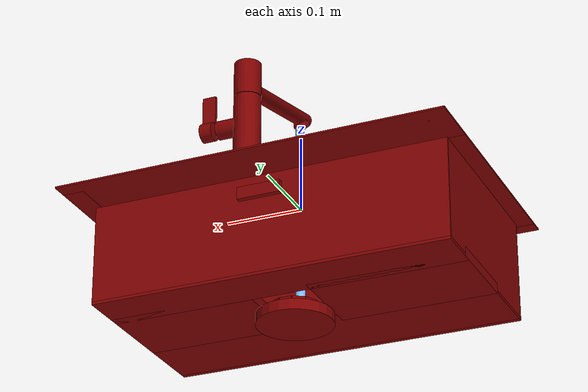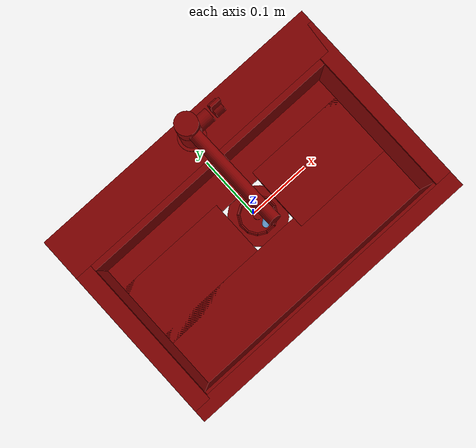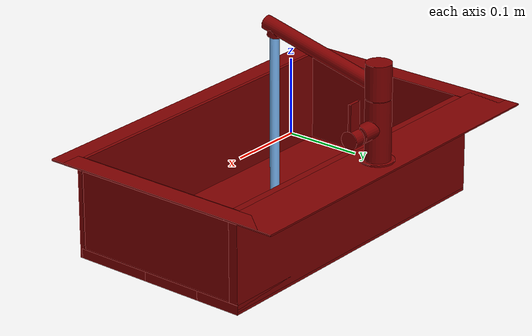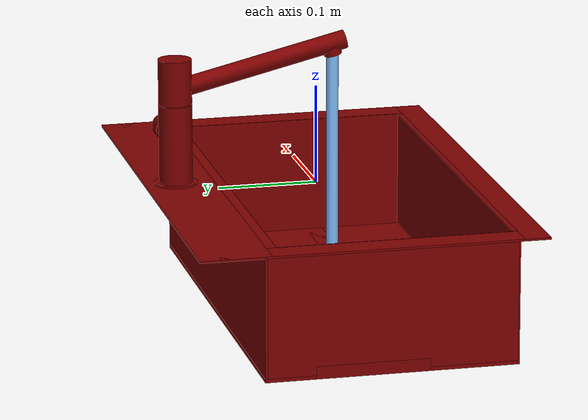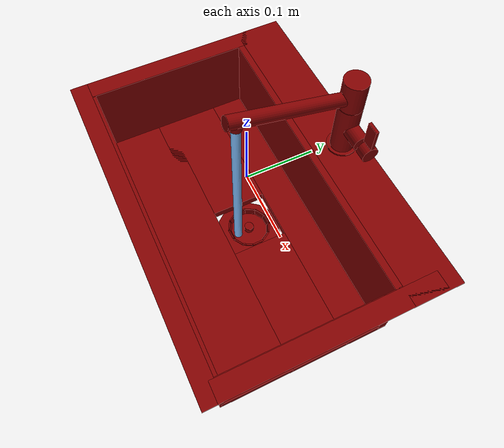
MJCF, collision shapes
<mujoco model="model">
  <compiler angle="radian"/>
  <asset>
    <mesh file="visuals/handle.obj" name="handle_vis"/>
    <mesh file="visuals/Body001.obj" name="Body001_vis"/>
    <mesh file="visuals/Funnel001.obj" name="Funnel001_vis"/>
    <mesh file="visuals/spout.obj" name="spout_vis"/>
    <texture file="visuals/T_BC001.png" name="Body001_material" type="2d"/>
    <material name="Body001_material" rgba="1 1 1 1.0" texture="Body001_material" shininess="0.4472135901451111" specular="0.3103448502657381"/>
    <texture file="visuals/T_BC001.png" name="handle_material" type="2d"/>
    <material name="handle_material" rgba="1 1 1 1.0" texture="handle_material" shininess="0.4472135901451111" specular="0.3103448502657381"/>
    <texture file="visuals/T_BC001.png" name="Funnel001_material" type="2d"/>
    <material name="Funnel001_material" rgba="1 1 1 1.0" texture="Funnel001_material" shininess="0.4472135901451111" specular="0.3103448502657381"/>
    <texture file="visuals/T_BC001.png" name="spout_material" type="2d"/>
    <material name="spout_material" rgba="1 1 1 1.0" texture="spout_material" shininess="0.4472135901451111" specular="0.3103448502657381"/>
  </asset>
  <default>
    <default class="visual">
      <geom conaffinity="0" contype="0" group="1" type="mesh"/>
    </default>
    <default class="collision">
      <geom group="0" rgba="0.5 0 0 0.5"/>
    </default>
    <default class="spawn">
      <geom group="0" rgba="1 1 1 0.5" contype="0" conaffinity="0"/>
      <site group="0" rgba="1 1 1 0.5"/>
    </default>
    <default class="region">
      <geom group="1" conaffinity="0" contype="0" rgba="0 1 0 0"/>
    </default>
  </default>
  <worldbody>
    <body>
      <body name="object">
        <geom mesh="Body001_vis" type="mesh" solimp="0.998 0.998 0.001" solref="0.001 1" density="100" friction="0.95 0.3 0.1" class="visual" material="Body001_material"/>
        <geom class="collision" type="box" pos="-0.226880 -0.023009 -0.061466" size="0.003667345503345132 0.12475115060806274 0.06482119858264923" quat="1.0 0.0 0.0 0.0"/>
        <geom class="collision" type="box" pos="0.227180 -0.023009 -0.061466" size="0.00346828973852098 0.12475115060806274 0.06482119858264923" quat="1.0 0.0 0.0 0.0"/>
        <geom class="collision" type="box" pos="0.000931 -0.145880 -0.063383" size="0.23147721588611603 0.0033645902294665575 0.06673800200223923" quat="1.0 0.0 0.0 0.0"/>
        <geom class="collision" type="box" pos="0.000931 0.098031 -0.061466" size="0.23147781193256378 0.00639995327219367 0.06482119858264923" quat="1.0 0.0 0.0 0.0"/>
        <geom class="collision" type="box" pos="0.000304 0.136908 0.002273" size="0.25214558839797974 0.035295356065034866 0.001082701375707984" quat="1.0 0.0 0.0 0.0"/>
        <geom class="collision" type="box" pos="0.000931 -0.094234 -0.123721" size="0.23147781193256378 0.05219629034399986 0.00639995327219367" quat="1.0 0.0 0.0 0.0"/>
        <geom class="collision" type="box" pos="0.000931 0.072662 -0.123721" size="0.23147781193256378 0.03176882117986679 0.00639995327219367" quat="1.0 0.0 0.0 0.0"/>
        <geom class="collision" type="box" pos="-0.129791 -0.002929 -0.123721" size="0.10075671225786209 0.05700807645916939 0.006399955600500107" quat="1.0 0.0 0.0 0.0"/>
        <geom class="collision" type="box" pos="0.139735 -0.002929 -0.123721" size="0.09267355501651764 0.05700806528329849 0.006399955600500107" quat="1.0 0.0 0.0 0.0"/>
        <geom class="collision" type="cylinder" pos="0.009182 0.142151 0.046606" size="0.016879526898264885 0.04095381125807762" quat="1.0 0.0 0.0 0.0"/>
        <geom class="collision" type="cylinder" pos="0.033685 0.142206 0.050759" size="0.011549532413482666 0.013307765126228333" quat="0.7071068286895752 1.2101618374060763e-08 0.7071067690849304 -1.2101617485882343e-08"/>
        <geom class="collision" type="cylinder" pos="0.009182 0.142151 0.006406" size="0.021738331764936447 0.0010754705872386694" quat="1.0 0.0 0.0 0.0"/>
        <geom class="collision" type="box" pos="0.008336 0.108004 -0.021319" size="0.0278876144438982 0.003650446655228734 0.007940861396491528" quat="1.0 0.0 0.0 0.0"/>
        <geom class="collision" type="box" pos="0.000304 -0.160509 0.002273" size="0.2521454393863678 0.013078400865197182 0.001082701375707984" quat="1.0 0.0 0.0 0.0"/>
        <geom class="collision" type="box" pos="0.238591 -0.001537 0.002273" size="0.013858308084309101 0.15294557809829712 0.001082701375707984" quat="1.0 0.0 0.0 0.0"/>
        <geom class="collision" type="box" pos="-0.237984 -0.001537 0.002273" size="0.013858308084309101 0.1529456079006195 0.001082701375707984" quat="1.0 0.0 0.0 0.0"/>
        <geom class="collision" type="cylinder" pos="0.009182 -0.001668 -0.146255" size="0.048743925988674164 0.006842711940407753" quat="1.0 0.0 0.0 0.0"/>
        <body name="handle">
          <joint axis="1.0 0.0 0.0" pos="0.058921 0.143078 0.050650" limited="true" name="handle_joint_hinge_0" type="hinge" range="-0.7853981633974483 0.7853981633974483" damping="1" frictionloss="1" armature=".01" stiffness="0.05"/>
          <joint axis="0.0 1.0 0.0" pos="0.058921 0.143078 0.050650" limited="true" name="handle_joint_hinge_1" type="hinge" range="0.0 0.17453292519943295" damping="1" frictionloss="1" armature=".01" stiffness="0.05"/>
          <geom mesh="handle_vis" type="mesh" solimp="0.998 0.998 0.001" solref="0.001 1" density="100" friction="0.95 0.3 0.1" class="visual" material="handle_material"/>
          <geom class="collision" type="cylinder" pos="0.060016 0.142729 0.050796" size="0.011701474897563457 0.007707531098276377" quat="0.7071068286895752 1.2101618374060763e-08 0.7071067690849304 -1.2101617485882343e-08"/>
          <geom class="collision" type="box" pos="0.058965 0.143018 0.079760" size="0.008623363450169563 0.002192244166508317 0.01824054680764675" quat="1.0 0.0 0.0 0.0"/>
        </body>
        <body name="Funnel001">
          <joint axis="0.0 0.0 1.0" pos="0.008728 -0.000606 -0.132669" limited="true" name="Funnel001_joint" range="0.0 0.05" type="slide" damping="1" frictionloss="1" armature=".01" stiffness="0.05"/>
          <geom mesh="Funnel001_vis" type="mesh" solimp="0.998 0.998 0.001" solref="0.001 1" density="100" friction="0.95 0.3 0.1" class="visual" material="Funnel001_material"/>
          <geom class="collision" type="cylinder" pos="0.008675 -0.000495 -0.132196" size="0.00687261950224638 0.004996557720005512" quat="1.0 0.0 0.0 0.0"/>
          <geom class="collision" type="cylinder" pos="0.008675 -0.000495 -0.136969" size="0.028193404898047447 0.0007708159391768277" quat="1.0 0.0 0.0 0.0"/>
          <geom class="collision" type="box" pos="0.037636 -0.000018 -0.133117" size="0.0011057918891310692 0.008754875510931015 0.004669900517910719" quat="0.9841789603233337 -0.0014562204014509916 0.17698609828948975 0.008097700774669647"/>
          <geom class="collision" type="box" pos="0.033867 -0.014789 -0.133117" size="0.0011057918891310692 0.00875487457960844 0.004669900517910719" quat="0.9516240358352661 0.04516791179776192 0.1711317002773285 -0.2511683404445648"/>
          <geom class="collision" type="box" pos="0.023617 -0.025308 -0.133117" size="0.0011057918891310692 0.00875487457960844 0.004669900517910719" quat="0.85685133934021 0.08707983791828156 0.15408861637115479 -0.4842309355735779"/>
          <geom class="collision" type="box" pos="0.009426 -0.029450 -0.133117" size="0.0011057918891310692 0.00875487457960844 0.004669900517910719" quat="0.7049056887626648 0.12351952493190765 0.12676404416561127 -0.6868637204170227"/>
          <geom class="collision" type="box" pos="-0.004905 -0.026079 -0.133117" size="0.0011057918891310692 0.00875487457960844 0.004669900517910719" quat="0.5071936845779419 0.1516808271408081 0.09120924770832062 -0.8434621095657349"/>
          <geom class="collision" type="box" pos="-0.015762 -0.016044 -0.133117" size="0.0011057918891310692 0.00875487457960844 0.004669900517910719" quat="0.27515074610710144 0.16993486881256104 0.04948069155216217 -0.9449687004089355"/>
          <geom class="collision" type="box" pos="-0.020247 -0.002059 -0.133117" size="0.001105792005546391 0.00875487457960844 0.004669900517910719" quat="0.026578739285469055 0.17692753672599792 0.004779688082635403 -0.9838533401489258"/>
          <geom class="collision" type="box" pos="-0.016835 0.013223 -0.133117" size="0.0011057918891310692 0.00875487457960844 0.004669900517910719" quat="0.2403361201286316 -0.1716340184211731 0.04321993142366409 0.9544172883033752"/>
          <geom class="collision" type="box" pos="-0.006281 0.024310 -0.133117" size="0.0011057918891310692 0.00875487457960844 0.004669900517910719" quat="0.48399266600608826 -0.1541128307580948 0.08703699707984924 0.8569859266281128"/>
          <geom class="collision" type="box" pos="0.007908 0.028460 -0.133117" size="0.0011057918891310692 0.00875487457960844 0.004669900517910719" quat="0.6866675615310669 -0.12679842114448547 0.12348427623510361 0.7050967812538147"/>
          <geom class="collision" type="box" pos="0.022209 0.025113 -0.133117" size="0.0011057918891310692 0.00875487457960844 0.004669900517910719" quat="0.8429978489875793 -0.09134795516729355 0.15159733593463898 0.5079649686813354"/>
          <geom class="collision" type="box" pos="0.033084 0.015099 -0.133117" size="0.0011057918891310692 0.00875487457960844 0.004669900517910719" quat="0.9447166919708252 -0.049636080861091614 0.16988955438137054 0.2760148346424103"/>
        </body>
        <body name="spout">
          <joint axis="0.0 0.0 1.0" pos="0.009148 0.142517 0.120118" limited="true" name="spout_joint" range="-0.7853981633974483 0.7853981633974483" type="hinge" damping="1" frictionloss="1" armature=".01" stiffness="0.05"/>
          <site type="cylinder" rgba="0.5 0.75 1 1" size="0.006188038736581802 0.14014987647533417" pos="0.009616 -0.019196 0.002664" name="water"/>
          <geom mesh="spout_vis" type="mesh" solimp="0.998 0.998 0.001" solref="0.001 1" density="100" friction="0.95 0.3 0.1" class="visual" material="spout_material"/>
          <geom class="collision" type="cylinder" pos="0.009182 0.142151 0.111064" size="0.016879526898264885 0.02276490069925785" quat="1.0 0.0 0.0 0.0"/>
          <geom class="collision" type="cylinder" pos="0.009510 -0.018862 0.134295" size="0.009006990119814873 0.005185999907553196" quat="0.9933034181594849 -0.11553486436605453 2.5653894967588882e-17 -4.862094392485064e-25"/>
          <geom class="collision" type="cylinder" pos="0.009306 0.053643 0.123696" size="0.009486191906034946 0.08825498819351196" quat="0.7863112092018127 0.6178306341171265 1.3787394833963642e-16 -5.427800981280817e-19"/>
        </body>
        <geom class="region" name="reg_main" type="box" pos="-2.500000000016378e-06 -6.0000000000060005e-06 -0.074687" size="0.2522315 0.172852 0.077848"/>
        <geom class="region" name="reg_basin" type="box" pos="-0.0012574999999999947 -0.022033999999999998 -0.058161000000000004" size="0.2209525 0.120423 0.054185"/>
      </body>
    </body>
  </worldbody>
  <actuator>
    <motor name="handle_joint_hinge_0_actuator" joint="handle_joint_hinge_0" gear="10"/>
    <motor name="handle_joint_hinge_1_actuator" joint="handle_joint_hinge_1" gear="10"/>
    <motor name="Funnel001_joint_actuator" joint="Funnel001_joint" gear="10"/>
    <motor name="spout_joint_actuator" joint="spout_joint" gear="10"/>
  </actuator>
</mujoco>
